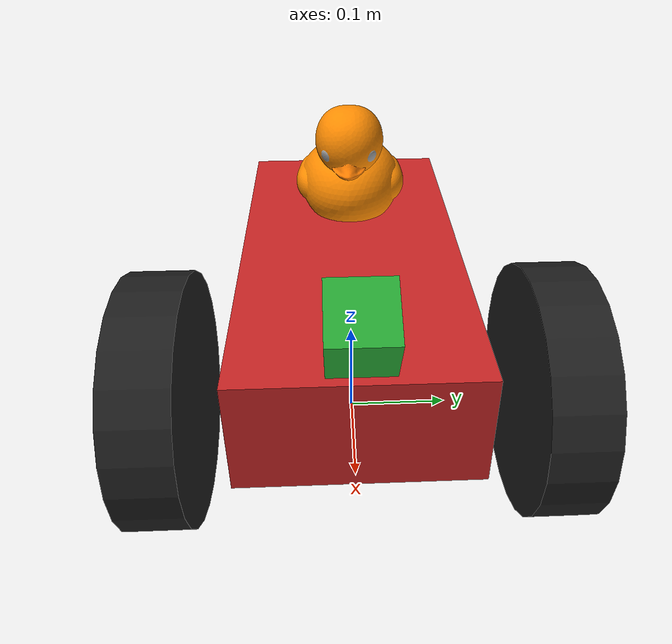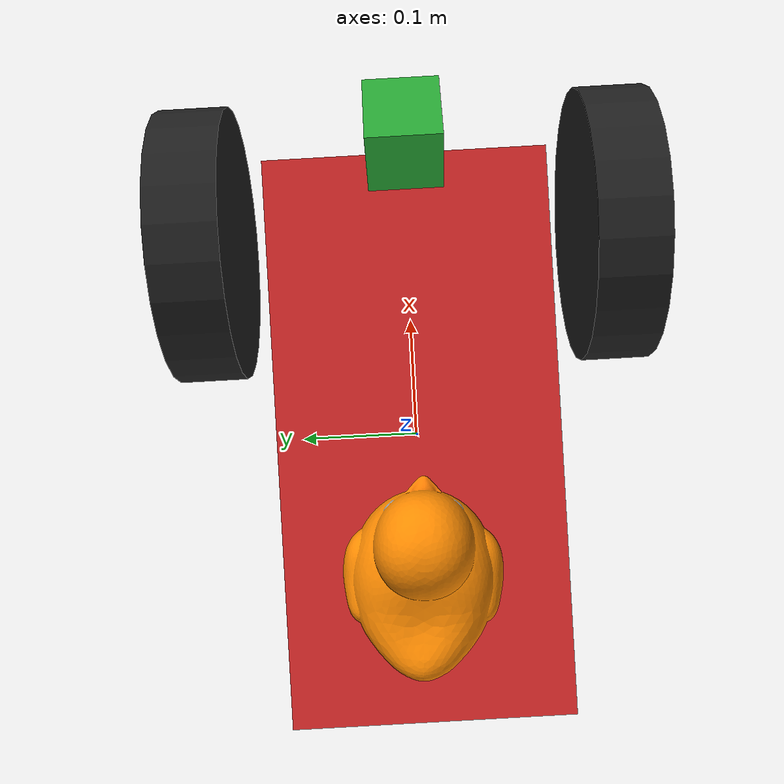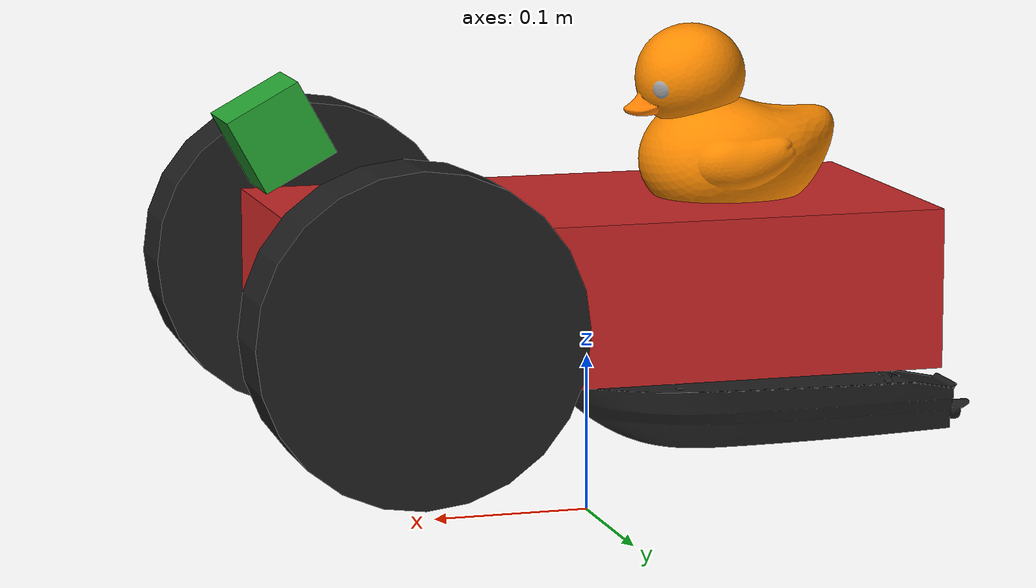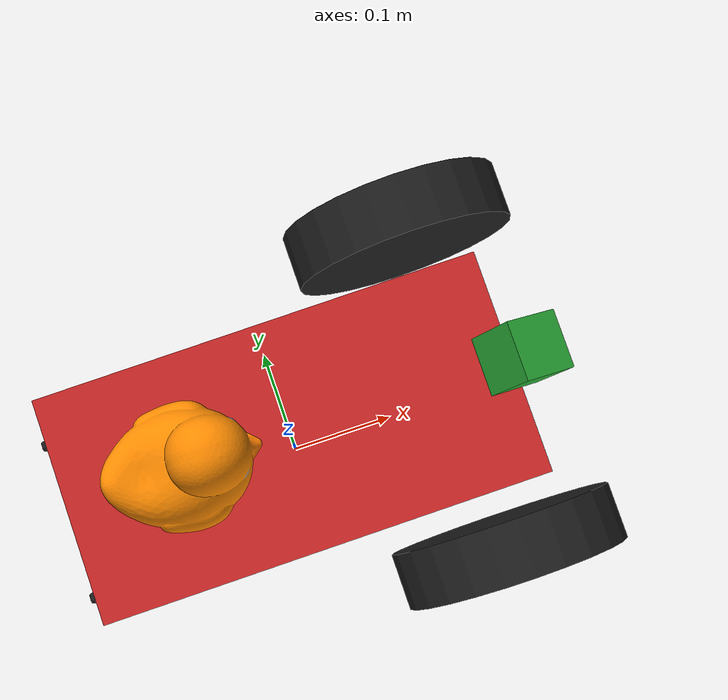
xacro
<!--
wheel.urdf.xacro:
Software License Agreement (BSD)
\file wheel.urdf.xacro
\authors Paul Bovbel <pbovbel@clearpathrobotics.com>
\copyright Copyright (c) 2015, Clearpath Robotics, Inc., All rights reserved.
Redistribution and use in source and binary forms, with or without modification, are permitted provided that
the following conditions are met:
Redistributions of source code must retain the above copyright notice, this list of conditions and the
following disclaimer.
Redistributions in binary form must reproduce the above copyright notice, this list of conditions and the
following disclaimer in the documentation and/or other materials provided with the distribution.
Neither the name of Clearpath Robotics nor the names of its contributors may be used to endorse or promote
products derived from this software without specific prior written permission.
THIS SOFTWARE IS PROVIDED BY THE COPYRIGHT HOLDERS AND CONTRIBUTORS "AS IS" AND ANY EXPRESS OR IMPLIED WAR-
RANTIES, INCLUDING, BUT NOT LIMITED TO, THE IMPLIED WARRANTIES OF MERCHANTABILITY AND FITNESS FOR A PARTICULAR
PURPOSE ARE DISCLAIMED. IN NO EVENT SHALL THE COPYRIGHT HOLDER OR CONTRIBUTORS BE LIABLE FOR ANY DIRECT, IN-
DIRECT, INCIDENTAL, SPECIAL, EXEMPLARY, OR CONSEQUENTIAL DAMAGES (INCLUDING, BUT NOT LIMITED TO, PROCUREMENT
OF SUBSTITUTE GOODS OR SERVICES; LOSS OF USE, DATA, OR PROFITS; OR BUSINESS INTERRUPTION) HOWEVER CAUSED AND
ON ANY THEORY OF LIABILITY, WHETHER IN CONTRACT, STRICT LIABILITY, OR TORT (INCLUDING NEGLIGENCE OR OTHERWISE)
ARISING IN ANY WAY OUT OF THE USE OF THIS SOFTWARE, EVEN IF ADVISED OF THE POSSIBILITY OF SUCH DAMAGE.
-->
<?xml version='1.0'?>

<robot name="mybot" xmlns:xacro="http://www.ros.org/wiki/xacro">

  <xacro:property name="cameraSize" value="0.05"/>
  <xacro:property name="cameraMass" value="0.0001"/>
  <xacro:arg name="veh" default="$(arg veh)"/>
  <xacro:include filename="$(find duckiebot_description)/urdf/wheel.urdf.xacro" />
  <xacro:include filename="$(find duckiebot_description)/urdf/mybot.gazebo" />
  <xacro:include filename="$(find duckiebot_description)/urdf/material.xacro" />
  <xacro:include filename="$(find duckiebot_description)/urdf/plugin/usv_gazebo_dynamics_plugin_duckiebot.xacro" />

  <!-- Defines the macro for simulated GPS -->
  <xacro:include filename="$(find kingfisher_gazebo)/urdf/gps_gazebo.xacro" />

  <!-- Defines the macro for simulated IMU -->
  <xacro:include filename="$(find kingfisher_gazebo)/urdf/imu_gazebo.xacro" />

  <!-- Macro for P3D ground truth -->
  <xacro:include filename="$(find kingfisher_gazebo)/urdf/p3d_gazebo.xacro" />
  <xacro:usv_gazebo name="duckiebot"/>
  <xacro:kingfisher_gps_gazebo name="duckiebot"/>

  <xacro:kingfisher_imu_gazebo name="duckiebot"/>

  <xacro:kingfisher_p3d_gazebo name="duckiebot"/>

    <link name="base_footprint">
        <inertial>
            <mass value="0.01" />
            <origin xyz="0 0 0.0" />
            <inertia ixx="0.0001" ixy="0.0" ixz="0.0"
                iyy="0.0001" iyz="0.0"
                izz="0.0001" />
        </inertial>

        <visual>
            <origin xyz="0 0 0" rpy="0 0 0" />
            <geometry>
                <box size="0.001 0.001 0.001" />
            </geometry>
        </visual>
    </link>

    <gazebo reference="base_footprint">
        <turnGravityOff>false</turnGravityOff>
    </gazebo>

    <joint name="base_footprint_joint" type="fixed">
    <origin xyz="0.0 0 0.15" rpy="0 0 0" />
        <parent link="base_footprint"/>
        <child link="base_link" />
    </joint>

  <link name='base_link'>
    <pose>0 0 0.0 0 0 0</pose>

    <inertial>
      <mass value="15.0"/>
      <origin xyz="0.0 0 0.0" rpy=" 0 0 0"/>
      <inertia
          ixx="0.1" ixy="0" ixz="0"
          iyy="0.1" iyz="0"
          izz="0.1"
      />
    </inertial>

    <collision name='collision'>
      <geometry>
        <box size=".4 .2 .1"/>
      </geometry>
    </collision>

    <visual name='base_link_visual'>
      <origin xyz="0 0 0" rpy=" 0 0 0"/>
      <geometry>
        <box size=".4 .2 .1"/>
      </geometry>
    </visual>

    <collision name='caster_collision'>
      <origin xyz="-0.15 0 -0.05" rpy=" 0 0 0"/>
      <geometry>
        <sphere radius="0.05"/>
      </geometry>
      <surface>
        <friction>
          <ode>
            <mu>0</mu>
            <mu2>0</mu2>
            <slip1>1.0</slip1>
            <slip2>1.0</slip2>
          </ode>
        </friction>
      </surface>
    </collision>

    <visual name='caster_visual'>
      <origin xyz="-0.15 0 -0.05" rpy=" 0 0 0"/>
      <geometry>
        <sphere radius="0.05"/>
      </geometry>
    </visual>

  </link>

  <link name="base">
    <collision>
      <origin xyz="0.0 0 0" rpy="0 0 0"/>
      <geometry>
        <box size="0.00001 0.00001 0.00001"/>
      </geometry>
    </collision>

    <visual>
      <origin xyz="-0.1 0 -0.05" rpy="0 0.0 1.57"/>
      <geometry>
        <mesh filename="package://duckiebot_description/urdf/brian_base.stl" />
      </geometry>
      <!--material name="green"/-->
    </visual>
    <inertial>
      <mass value="0.0001" />
      <origin xyz="0 0 0" rpy="0 0 0"/>
      <box_inertia m="${cameraMass}" x="${cameraSize}" y="${cameraSize}" z="${cameraSize}" />
      <inertia ixx="0.0001" ixy="0" ixz="0" iyy="0.0001" iyz="0" izz="0.0001" />
    </inertial>

  </link>
  <joint name="propusion_joint" type="fixed">
    <axis xyz="0 0 0" />
    <origin xyz="0 0 0.0" rpy="0 0 0.0 "/>
    <parent link="base_link"/>
    <child link="base"/>
  </joint>

  <link name="weight">
    <collision>
      <origin xyz="0.0 0 0" rpy="0 0 0"/>
      <geometry>
        <box size="0.00001 0.00001 0.00001"/>
      </geometry>
    </collision>

    <visual>
      <origin xyz="0.1 0 0.08" rpy="0 0.0 0.00"/>
      <geometry>
        <mesh filename="package://duckiebot_description/urdf/duck/dduck.dae" />
      </geometry>
      <!--material name="green"/-->
    </visual>

    <inertial>
      <mass value="7.5" />
      <origin xyz="0 0 0" rpy="0 0 0"/>
      <box_inertia m="${cameraMass}" x="${cameraSize}" y="${cameraSize}" z="${cameraSize}" />
      <inertia ixx="0.0001" ixy="0" ixz="0" iyy="0.0001" iyz="0" izz="0.0001" />
    </inertial>
  </link>
  <joint name="weight_joint" type="continuous">
    <axis xyz="0 0 0" />
    <origin xyz="-0.2 0 0.0" rpy="0 0.0 0"/>
    <parent link="base_link"/>
    <child link="weight"/>
  </joint>

    <xacro:duckiebot_wheel wheel_prefix="left">
      <origin xyz="0.15 0.15 0" rpy="0 0 0" />
    </xacro:duckiebot_wheel>

    <xacro:duckiebot_wheel wheel_prefix="right">
      <origin xyz="0.15 -0.15 0" rpy="0 0 0" />
    </xacro:duckiebot_wheel>

  <link name="camera">
    <collision>
      <origin xyz="0 0 0" rpy="0 0 0"/>
      <geometry>
        <box size="${cameraSize} ${cameraSize} ${cameraSize}"/>
      </geometry>
    </collision>

    <visual>
      <origin xyz="0 0 0" rpy="0 0 0"/>
      <geometry>
        <box size="${cameraSize} ${cameraSize} ${cameraSize}"/>
      </geometry>
      <material name="green"/>
    </visual>

    <inertial>
      <mass value="${cameraMass}" />
      <origin xyz="0 0 0" rpy="0 0 0"/>
      <box_inertia m="${cameraMass}" x="${cameraSize}" y="${cameraSize}" z="${cameraSize}" />
      <inertia ixx="1e-6" ixy="0" ixz="0" iyy="1e-6" iyz="0" izz="1e-6" />
    </inertial>
  </link>

  <joint name="camera_joint" type="fixed">
    <axis xyz="0 .8 0" />
    <origin xyz=".2 0 0.1" rpy="0 0.5 0"/>
    <parent link="base_link"/>
    <child link="camera"/>
  </joint>

</robot>

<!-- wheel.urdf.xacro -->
<robot xmlns:xacro="http://ros.org/wiki/xacro" name="duckiebot_wheel">

	<xacro:macro name="duckiebot_wheel" params="wheel_prefix *joint_pose">
		<link name="${wheel_prefix}_wheel">
			   <max_contacts>2</max_contacts>
			    <collision name="collision">
			   <max_contacts>2</max_contacts>
			      <origin xyz="0 0 0" rpy="0 1.5707 1.5707"/>
			      <geometry>
				<cylinder radius="0.1" length="0.05"/>
			      </geometry>
			    </collision>
			    <visual name="right_wheel_visual">
			      <origin xyz="0 0 0" rpy="0 1.5707 1.5707"/>
			      <geometry>
				<cylinder radius="0.1" length="0.05"/>
			      </geometry>
			    </visual>
			    <inertial>
			      <origin xyz="0 0 0" rpy="0 1.5707 1.5707"/>
			      <mass value="5"/>
			      <inertia
				ixx="0.02" ixy="0.0" ixz="0.0"
				iyy="0.02" iyz="0.0"
				izz="0.02"/>
			    </inertial>
		</link>

		<gazebo reference="${wheel_prefix}_wheel">
			<material>Gazebo/Black</material>
			<mu1 value="1.0"/>
			<mu2 value="1.0"/>
			<kp value="10000000.0" />
			<kd value="1.0" />
			<fdir1 value="1 0 0"/>

		</gazebo>

		<joint name="${wheel_prefix}_wheel_hinge" type="continuous">
			<parent link="base_link"/>
			<child link="${wheel_prefix}_wheel"/>
			<xacro:insert_block name="joint_pose"/>
			<axis xyz="0 1 0" rpy="0 0 0" />
		</joint>

		<transmission name="${wheel_prefix}_wheel_trans" type="SimpleTransmission">
			<type>transmission_interface/SimpleTransmission</type>
			<actuator name="${wheel_prefix}_wheel_motor">
				<mechanicalReduction>1</mechanicalReduction>
			</actuator>
			<joint name="${wheel_prefix}_wheel_hinge">
				<hardwareInterface>VelocityJointInterface</hardwareInterface>
			</joint>
		</transmission>

	</xacro:macro>
</robot>
